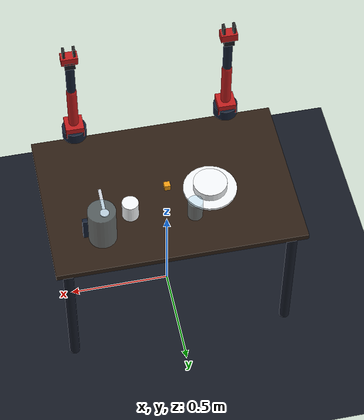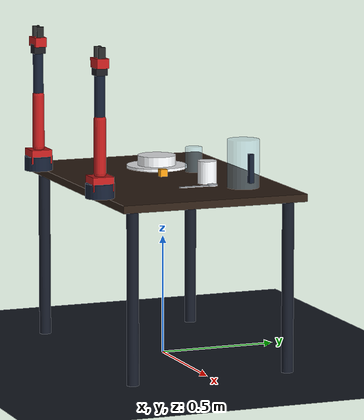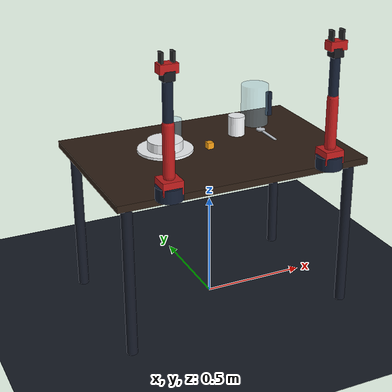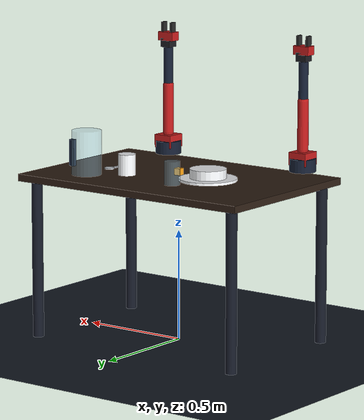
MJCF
<mujoco model="twinhands_dual_so101_dining_workcell">
  <compiler angle="degree" coordinate="local" inertiafromgeom="true" meshdir="assets"/>
  <option timestep="0.002" gravity="0 0 -9.81" integrator="RK4">
    <flag contact="enable" energy="enable"/>
  </option>

  <asset>
    <!-- Materials -->
    <texture name="grid_floor" type="2d" builtin="checker" width="512" height="512" rgb1="0.1 0.12 0.16" rgb2="0.06 0.08 0.12"/>
    <material name="mat_floor" texture="grid_floor" texrepeat="10 10" reflectance="0.1"/>

    <!-- Table Materials (Rich Dark Walnut) -->
    <material name="tabletop_dark" rgba="0.18 0.12 0.08 1.0" specular="0.3" roughness="0.6"/>
    <material name="steel_legs" rgba="0.08 0.10 0.15 1.0" specular="0.6"/>

    <!-- Spider-Man Industrial Robot Theme -->
    <material name="spiderman_red" rgba="0.75 0.11 0.11 1.0" specular="0.4" shininess="0.3"/>
    <material name="spiderman_navy" rgba="0.08 0.12 0.20 1.0" specular="0.3" shininess="0.2"/>
    <material name="metallic_black" rgba="0.10 0.10 0.12 1.0" specular="0.8"/>
    <material name="gripper_rubber" rgba="0.15 0.15 0.15 1.0" friction="1.4 0.08 0.005"/>

    <!-- Tableware Materials -->
    <material name="ceramic_white" rgba="0.96 0.97 0.98 1.0" specular="0.7" shininess="0.6"/>
    <material name="stainless_steel" rgba="0.80 0.82 0.85 1.0" specular="0.9" shininess="0.8"/>
    <material name="clear_glass" rgba="0.65 0.85 0.95 0.35" specular="0.9" shininess="0.9"/>
    <material name="safety_orange" rgba="0.96 0.62 0.07 1.0" specular="0.3" roughness="0.6"/>
  </asset>

  <worldbody>
    <!-- Multi-Point Restaurant Cinematic Lighting -->
    <!-- Overhead Table Key Spotlight -->
    <light directional="false" pos="0 0 2.6" dir="0 0 -1" diffuse="0.95 0.90 0.85" specular="0.4 0.4 0.4" cutoff="45"/>
    <!-- Centerpiece Warm Candle Glow -->
    <light directional="false" pos="0 0 0.96" dir="0 0 -1" diffuse="1.0 0.6 0.2" specular="0.3 0.2 0.1" cutoff="90"/>
    <!-- Left Arm Spider-Red Rim/Key -->
    <light directional="true" pos="-1.5 -1.0 2.0" dir="0.8 0.5 -1.0" diffuse="0.75 0.25 0.25" specular="0.3 0.1 0.1"/>
    <!-- Right Arm Electric-Blue Rim/Key -->
    <light directional="true" pos="1.5 -1.0 2.0" dir="-0.8 0.5 -1.0" diffuse="0.25 0.45 0.85" specular="0.1 0.2 0.3"/>
    <!-- Balanced Environmental Ambient Fill -->
    <light directional="true" pos="0 1.5 3.0" dir="0 -0.4 -0.9" diffuse="0.45 0.50 0.60" specular="0.1 0.1 0.1"/>

    <!-- Floor -->
    <geom name="floor" type="plane" size="5 5 0.1" material="mat_floor"/>

    <!-- Overhead Perception Camera for Intel OpenVINO -->
    <camera name="overhead_camera" pos="0 0 2.2" euler="0 0 0" fovy="60"/>
    <!-- Angled Inspection Camera -->
    <camera name="front_inspection" pos="0 -1.6 1.4" euler="65 0 0" fovy="55"/>

    <!-- DEMONSTRATION TABLE (1.2m x 0.8m x 0.75m)                     -->
    <body name="dining_table" pos="0 0 0.75">
      <!-- Tabletop (1.2m width x 0.8m depth x 0.032m thickness) -->
      <geom name="tabletop" type="box" size="0.60 0.40 0.016" pos="0 0 -0.016" material="tabletop_dark"/>
      <!-- Four Legs -->
      <geom name="leg_fl" type="cylinder" size="0.025 0.367" pos="-0.54 -0.34 -0.383" material="steel_legs"/>
      <geom name="leg_fr" type="cylinder" size="0.025 0.367" pos="0.54 -0.34 -0.383" material="steel_legs"/>
      <geom name="leg_bl" type="cylinder" size="0.025 0.367" pos="-0.54 0.34 -0.383" material="steel_legs"/>
      <geom name="leg_br" type="cylinder" size="0.025 0.367" pos="0.54 0.34 -0.383" material="steel_legs"/>
    </body>

    <!-- 🔴 LEFT SO-101 ROBOTIC ARM (Spider-Man Red Primary)           -->
    <!-- Base position: [-0.38, -0.42, 0.75]                           -->
    <body name="left_arm_base" pos="-0.38 -0.42 0.75">
      <geom name="left_base_mount" type="cylinder" size="0.06 0.03" pos="0 0 0.03" material="spiderman_navy"/>

      <!-- Joint 1: Waist Pan -->
      <body name="left_shoulder_turret" pos="0 0 0.06">
        <joint name="left_q1_waist" type="hinge" axis="0 0 1" range="-180 180" damping="0.5"/>
        <geom name="left_turret_geom" type="box" size="0.045 0.045 0.03" material="spiderman_red"/>

        <!-- Joint 2: Shoulder Lift -->
        <body name="left_upper_arm" pos="0 0 0.04">
          <joint name="left_q2_shoulder" type="hinge" axis="0 1 0" range="-45 135" damping="0.8"/>
          <geom name="left_upper_link" type="capsule" fromto="0 0 0 0 0 0.22" size="0.025" material="spiderman_red"/>

          <!-- Joint 3: Elbow Flex -->
          <body name="left_forearm" pos="0 0 0.22">
            <joint name="left_q3_elbow" type="hinge" axis="0 1 0" range="-120 90" damping="0.6"/>
            <geom name="left_forearm_link" type="capsule" fromto="0 0 0 0 0 0.20" size="0.022" material="spiderman_navy"/>

            <!-- Joint 4: Wrist Pitch -->
            <body name="left_wrist_pitch" pos="0 0 0.20">
              <joint name="left_q4_wrist_pitch" type="hinge" axis="0 1 0" range="-90 90" damping="0.3"/>
              <geom name="left_wrist_box" type="box" size="0.025 0.025 0.02" material="metallic_black"/>

              <!-- Joint 5: Wrist Roll -->
              <body name="left_wrist_roll" pos="0 0 0.03">
                <joint name="left_q5_wrist_roll" type="hinge" axis="0 0 1" range="-180 180" damping="0.2"/>
                <geom name="left_gripper_palm" type="box" size="0.04 0.025 0.02" material="spiderman_red"/>

                <!-- Left Parallel Gripper Fingers -->
                <body name="left_gripper_finger_l" pos="-0.025 0 0.03">
                  <joint name="left_gripper_slide_l" type="slide" axis="1 0 0" range="-0.025 0" damping="0.1"/>
                  <geom name="left_finger_geom_l" type="box" size="0.006 0.015 0.035" material="gripper_rubber"/>
                </body>
                <body name="left_gripper_finger_r" pos="0.025 0 0.03">
                  <joint name="left_gripper_slide_r" type="slide" axis="-1 0 0" range="-0.025 0" damping="0.1"/>
                  <geom name="left_finger_geom_r" type="box" size="0.006 0.015 0.035" material="gripper_rubber"/>
                </body>
              </body>
            </body>
          </body>
        </body>
      </body>
    </body>

    <!-- 🔵 RIGHT SO-101 ROBOTIC ARM (Spider-Man Mirror Counterpart)   -->
    <!-- Base position: [+0.38, -0.42, 0.75]                           -->
    <body name="right_arm_base" pos="0.38 -0.42 0.75">
      <geom name="right_base_mount" type="cylinder" size="0.06 0.03" pos="0 0 0.03" material="spiderman_navy"/>

      <!-- Joint 1: Waist Pan -->
      <body name="right_shoulder_turret" pos="0 0 0.06">
        <joint name="right_q1_waist" type="hinge" axis="0 0 1" range="-180 180" damping="0.5"/>
        <geom name="right_turret_geom" type="box" size="0.045 0.045 0.03" material="spiderman_red"/>

        <!-- Joint 2: Shoulder Lift -->
        <body name="right_upper_arm" pos="0 0 0.04">
          <joint name="right_q2_shoulder" type="hinge" axis="0 1 0" range="-45 135" damping="0.8"/>
          <geom name="right_upper_link" type="capsule" fromto="0 0 0 0 0 0.22" size="0.025" material="spiderman_red"/>

          <!-- Joint 3: Elbow Flex -->
          <body name="right_forearm" pos="0 0 0.22">
            <joint name="right_q3_elbow" type="hinge" axis="0 1 0" range="-120 90" damping="0.6"/>
            <geom name="right_forearm_link" type="capsule" fromto="0 0 0 0 0 0.22" size="0.022" material="spiderman_navy"/>

            <!-- Joint 4: Wrist Pitch -->
            <body name="right_wrist_pitch" pos="0 0 0.20">
              <joint name="right_q4_wrist_pitch" type="hinge" axis="0 1 0" range="-90 90" damping="0.3"/>
              <geom name="right_wrist_box" type="box" size="0.025 0.025 0.02" material="metallic_black"/>

              <!-- Joint 5: Wrist Roll -->
              <body name="right_wrist_roll" pos="0 0 0.03">
                <joint name="right_q5_wrist_roll" type="hinge" axis="0 0 1" range="-180 180" damping="0.2"/>
                <geom name="right_gripper_palm" type="box" size="0.04 0.025 0.02" material="spiderman_red"/>

                <!-- Right Parallel Gripper Fingers -->
                <body name="right_gripper_finger_l" pos="-0.025 0 0.03">
                  <joint name="right_gripper_slide_l" type="slide" axis="1 0 0" range="-0.025 0" damping="0.1"/>
                  <geom name="right_finger_geom_l" type="box" size="0.006 0.015 0.035" material="gripper_rubber"/>
                </body>
                <body name="right_gripper_finger_r" pos="0.025 0 0.03">
                  <joint name="right_gripper_slide_r" type="slide" axis="-1 0 0" range="-0.025 0" damping="0.1"/>
                  <geom name="right_finger_geom_r" type="box" size="0.006 0.015 0.035" material="gripper_rubber"/>
                </body>
              </body>
            </body>
          </body>
        </body>
      </body>
    </body>

    <!-- DINNER TABLEWARE ASSETS (Plates, Bowls, Cups, Spoons, Cube)   -->
    <!-- Ceramic Dinner Plate -->
    <body name="obj_dinner_plate_1" pos="-0.20 0.05 0.76">
      <freejoint/>
      <geom name="plate_base_geom" type="cylinder" size="0.095 0.005" material="ceramic_white" mass="0.22"/>
      <geom name="plate_rim_geom" type="cylinder" size="0.130 0.006" pos="0 0 0.006" material="ceramic_white" mass="0.26"/>
    </body>

    <!-- Ceramic Soup Bowl -->
    <body name="obj_dinner_bowl_1" pos="-0.20 0.05 0.78">
      <freejoint/>
      <geom name="bowl_geom" type="cylinder" size="0.082 0.034" material="ceramic_white" mass="0.32"/>
    </body>

    <!-- Ceramic Cup -->
    <body name="obj_ceramic_cup_1" pos="0.20 0.12 0.79">
      <freejoint/>
      <geom name="cup_geom" type="cylinder" size="0.040 0.055" material="ceramic_white" mass="0.26"/>
    </body>

    <!-- Stainless Spoon -->
    <body name="obj_dining_spoon_1" pos="0.32 0.02 0.76">
      <freejoint/>
      <geom name="spoon_handle_geom" type="box" size="0.008 0.07 0.002" material="stainless_steel" mass="0.035"/>
      <geom name="spoon_bowl_geom" type="cylinder" size="0.022 0.003" pos="0 0.075 0.002" material="stainless_steel" mass="0.017"/>
    </body>

    <!-- Transparent Drinking Glass -->
    <body name="obj_drinking_glass_1" pos="-0.10 0.18 0.79">
      <freejoint/>
      <geom name="glass_geom" type="cylinder" size="0.036 0.065" material="clear_glass" mass="0.21"/>
    </body>

    <!-- Transparent Water Pitcher Jug -->
    <body name="obj_water_jug_1" pos="0.35 0.22 0.84">
      <freejoint/>
      <geom name="jug_body_geom" type="cylinder" size="0.067 0.110" material="clear_glass" mass="0.48"/>
      <geom name="jug_handle_geom" type="box" size="0.012 0.010 0.060" pos="0.08 0 0" material="spiderman_navy" mass="0.08"/>
    </body>

    <!-- 30mm Precision Manipulation Benchmark Cube -->
    <body name="obj_manipulation_cube" pos="0.0 0.0 0.77">
      <freejoint/>
      <geom name="cube_benchmark_geom" type="box" size="0.015 0.015 0.015" material="safety_orange" mass="0.032" friction="1.4 0.08 0.005"/>
    </body>

  </worldbody>

  <!-- Actuators for Dual SO-101 Robotic Arms -->
  <actuator>
    <!-- Left Arm Servos -->
    <position name="act_left_q1" joint="left_q1_waist" kp="80" kv="12" ctrlrange="-180 180"/>
    <position name="act_left_q2" joint="left_q2_shoulder" kp="120" kv="18" ctrlrange="-45 135"/>
    <position name="act_left_q3" joint="left_q3_elbow" kp="100" kv="15" ctrlrange="-120 90"/>
    <position name="act_left_q4" joint="left_q4_wrist_pitch" kp="50" kv="8" ctrlrange="-90 90"/>
    <position name="act_left_q5" joint="left_q5_wrist_roll" kp="40" kv="5" ctrlrange="-180 180"/>
    <position name="act_left_gripper" joint="left_gripper_slide_l" kp="200" kv="10" ctrlrange="-0.025 0"/>

    <!-- Right Arm Servos -->
    <position name="act_right_q1" joint="right_q1_waist" kp="80" kv="12" ctrlrange="-180 180"/>
    <position name="act_right_q2" joint="right_q2_shoulder" kp="120" kv="18" ctrlrange="-45 135"/>
    <position name="act_right_q3" joint="right_q3_elbow" kp="100" kv="15" ctrlrange="-120 90"/>
    <position name="act_right_q4" joint="right_q4_wrist_pitch" kp="50" kv="8" ctrlrange="-90 90"/>
    <position name="act_right_q5" joint="right_q5_wrist_roll" kp="40" kv="5" ctrlrange="-180 180"/>
    <position name="act_right_gripper" joint="right_gripper_slide_l" kp="200" kv="10" ctrlrange="-0.025 0"/>
  </actuator>
</mujoco>
